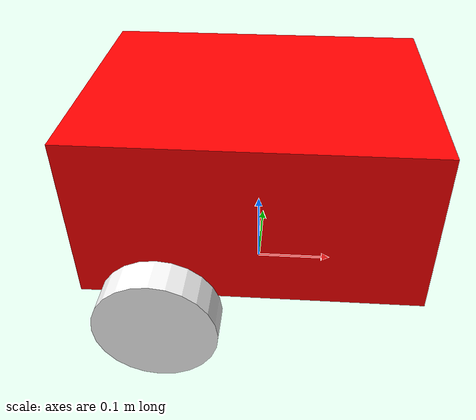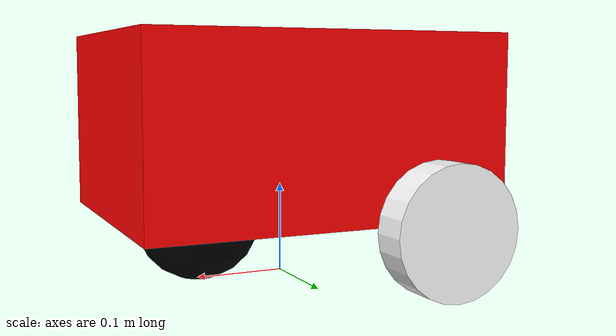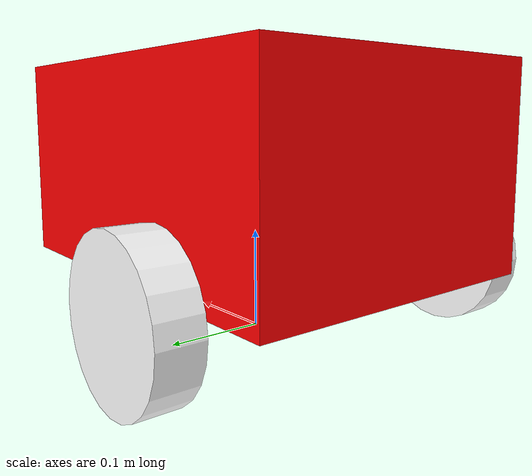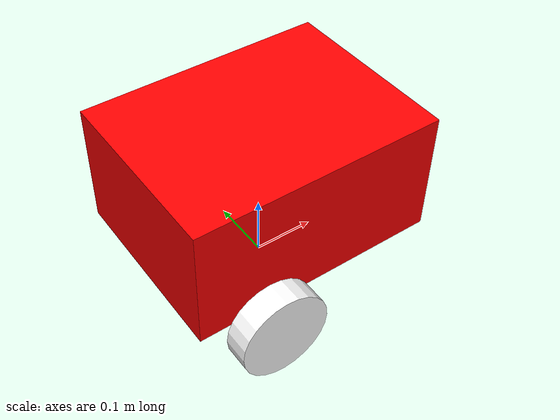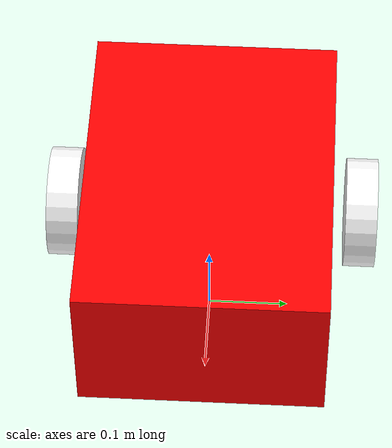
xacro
<?xml version="1.0"?>
<robot xmlns:xacro="http://www.ros.org/wiki/xacro"  name="robot">
    <xacro:include filename ="inertial_macros.xacro" />
    <link name="base_link">
    </link>
<!--CHASSIS-->
    <link name="chassis">

        <visual name="">
            <origin xyz="0.0 0.0 0.1" rpy="0.0 0.0 0.0"/>
            <geometry>
                <box size="0.4 0.3 0.2"/>
            </geometry>
            <material name="">
                <color rgba="1.0 0.0 0.0 1.0"/>
            </material>
        </visual>

        <collision>
            <origin xyz="0.0 0.0 0.1" rpy="0.0 0.0 0.0"/>
            <geometry>
                <box size="0.4 0.3 0.2"/>
            </geometry>
        </collision>
        <xacro:inertial_box mass = "0.3" x = "0.4" y = "0.3" z = "0.2">
            <origin xyz="0.0 0.0 0.1" rpy="0.0 0.0 0.0"/>
        </xacro:inertial_box>
    </link>
    <gazebo reference = "chassis">
        <material>
            Gazebo/Red
        </material>
    </gazebo>

<!--LEFTWHEEL LINK -->
    <link name="left_wheel">

        <visual name="">
            <origin xyz="0.0 0.0 0.0" rpy="0.0 0.0 0.0"/>
            <geometry>
                <cylinder radius="0.07" length="0.04"/>
            </geometry>
            <material name="">
                <color rgba="1.0 1.0 1.0 1.0"/>
            </material>
        </visual>

        <collision>
            <origin xyz="0.0 0.0 0.0" rpy="0.0 0.0 0.0"/>
            <geometry>
                <cylinder radius="0.07" length="0.04"/>
            </geometry>
        </collision>

        <xacro:inertial_cylinder mass = "0.1" radius = "0.07" length = "0.04">
            <origin xyz="0.0 0.0 0.0" rpy="0.0 0.0 0.0"/>
        </xacro:inertial_cylinder>
    </link>

    <gazebo reference = "left_wheel">
        <material>
            Gazebo/White
        </material>
    </gazebo>

<!--RIGHT WHEEL LINK -->
    <link name="right_wheel">

        <visual name="">
            <origin xyz="0.0 0.0 0.0" rpy="0.0 0.0 0.0"/>
            <geometry>
                <cylinder radius="0.07" length="0.04"/>
            </geometry>
            <material name="">
                <color rgba="1.0 1.0 1.0 1.0"/>
            </material>
        </visual>

        <collision>
            <origin xyz="0.0 0.0 0.0" rpy="0.0 0.0 0.0"/>
            <geometry>
                <cylinder radius="0.07" length="0.04"/>
            </geometry>
        </collision>

        <xacro:inertial_cylinder mass = "0.1" radius = "0.07" length = "0.04">
            <origin xyz="0.0 0.0 0.0" rpy="0.0 0.0 0.0"/>
        </xacro:inertial_cylinder>

    </link>

    <gazebo reference = "right_wheel">
        <material>
            Gazebo/White
        </material>
    </gazebo>

<!--CASTER WHEEL-->
    <link name="caster_wheel">
        <visual name="">
            <origin xyz="0.0 0.0 0.0" rpy="0.0 0.0 0.0"/>
            <geometry>
                <sphere radius="0.07"/>
            </geometry>
            <material name="">
                <color rgba="0.0 0.0 0.0 1.0"/>
                <texture filename=""/>
            </material>
        </visual>
        <collision>
            <origin xyz="0.0 0.0 0.0" rpy="0.0 0.0 0.0"/>
            <geometry>
                <sphere radius="0.07"/>
            </geometry>
        </collision>

        <xacro:inertial_sphere mass = "0.000001" radius = "0.07">
            <origin xyz="0.0 0.0 0.0" rpy="0.0 0.0 0.0"/>
        </xacro:inertial_sphere>
    </link>

    <gazebo reference = "caster_wheel">
        <material>
            Gazebo/Black
        </material>
        <mu1 value = "0.000001"/>
        <mu2 value = "0.000001"/>
    </gazebo>

<!--CHASSIS JOINT-->
    <joint name="chassis_joint" type="fixed">
        <origin xyz="0.0 0.0 0.07" rpy="0.0 0.0 0.0"/>
        <parent link="base_link"/>
        <child link="chassis"/>
    </joint>

<!--LEFT JOINT-->
    <joint name="left_wheel_joint" type="continuous">
        <origin xyz="-0.1 0.19 0.0" rpy="${pi/2} 0.0 0.0"/>
        <parent link="chassis"/>
        <child link="left_wheel"/>
        <axis xyz="0.0 0.0 -1.0"/>
    </joint>

<!--RIGHT JOINT-->
    <joint name="right_wheel_joint" type="continuous">
        <origin xyz="-0.1 -0.19 0.0" rpy="-${pi/2} 0.0 0.0"/>
        <parent link="chassis"/>
        <child link="right_wheel"/>
        <axis xyz="0.0 0.0 1.0"/>
    </joint>

<!--CASTER WHEEL JOINT-->
    <joint name="caster_wheel_joint" type="fixed">
        <origin xyz="0.1 0.0 0.0" rpy="0.0 0.0 0.0"/>
        <parent link="chassis"/>
        <child link="caster_wheel"/>
        <axis xyz="0.0 0.0 0.0"/>
    </joint>

</robot>
